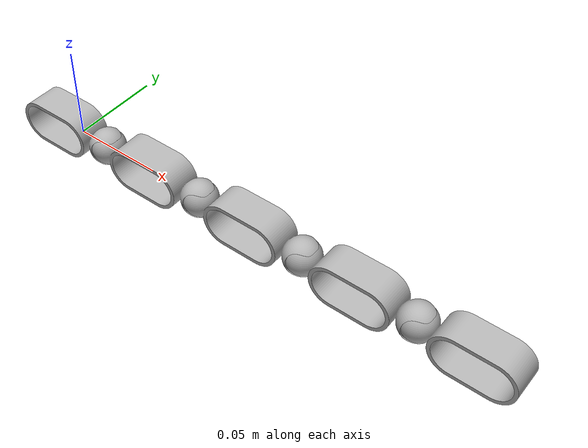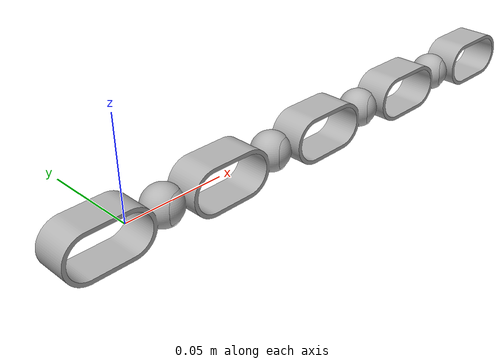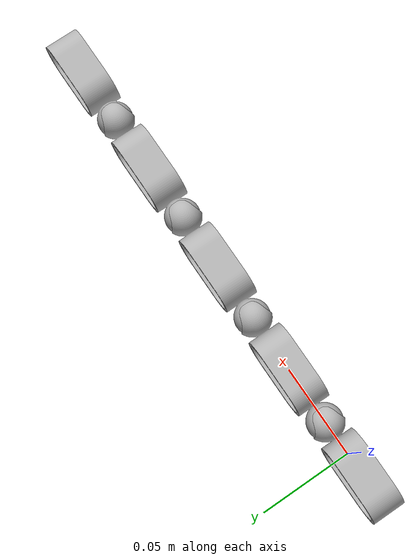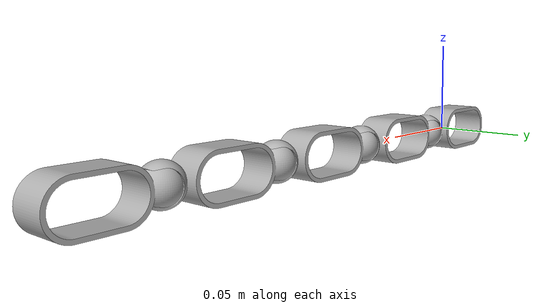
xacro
<?xml version="1.0" ?>
<robot name="yilansimu" xmlns:xacro="http://www.ros.org/wiki/xacro">

<xacro:include filename="$(find yilansimu_description)/urdf/materials.xacro" />
<xacro:include filename="$(find yilansimu_description)/urdf/yilansimu.trans" />
<xacro:include filename="$(find yilansimu_description)/urdf/yilansimu.gazebo" />
<link name="base_link">
  <inertial>
    <origin xyz="-0.010140486124849883 4.3371337475389595e-08 1.3412238498127023e-08" rpy="0 0 0"/>
    <mass value="0.0045795100400537"/>
    <inertia ixx="0.0" iyy="1e-06" izz="1e-06" ixy="-0.0" iyz="-0.0" ixz="-0.0"/>
  </inertial>
  <visual>
    <origin xyz="0 0 0" rpy="0 0 0"/>
    <geometry>
      <mesh filename="package://yilansimu_description/meshes/base_link.stl" scale="0.001 0.001 0.001"/>
    </geometry>
    <material name="silver"/>
  </visual>
  <collision>
    <origin xyz="0 0 0" rpy="0 0 0"/>
    <geometry>
      <mesh filename="package://yilansimu_description/meshes/base_link.stl" scale="0.001 0.001 0.001"/>
    </geometry>
  </collision>
</link>

<link name="vagon_2_1">
  <inertial>
    <origin xyz="0.01853454749117604 2.2477804808574556e-08 1.0179807043573104e-08" rpy="0 0 0"/>
    <mass value="0.008294307256815443"/>
    <inertia ixx="1e-06" iyy="4e-06" izz="4e-06" ixy="-0.0" iyz="-0.0" ixz="-0.0"/>
  </inertial>
  <visual>
    <origin xyz="-0.019292 -0.0 -0.0" rpy="0 0 0"/>
    <geometry>
      <mesh filename="package://yilansimu_description/meshes/vagon_2_1.stl" scale="0.001 0.001 0.001"/>
    </geometry>
    <material name="silver"/>
  </visual>
  <collision>
    <origin xyz="-0.019292 -0.0 -0.0" rpy="0 0 0"/>
    <geometry>
      <mesh filename="package://yilansimu_description/meshes/vagon_2_1.stl" scale="0.001 0.001 0.001"/>
    </geometry>
  </collision>
</link>

<link name="vagon_3_1">
  <inertial>
    <origin xyz="0.018534610223486 2.2477804796088586e-08 1.01798070413029e-08" rpy="0 0 0"/>
    <mass value="0.008294307256815481"/>
    <inertia ixx="1e-06" iyy="4e-06" izz="4e-06" ixy="-0.0" iyz="-0.0" ixz="-0.0"/>
  </inertial>
  <visual>
    <origin xyz="-0.082299 -0.0 -0.0" rpy="0 0 0"/>
    <geometry>
      <mesh filename="package://yilansimu_description/meshes/vagon_3_1.stl" scale="0.001 0.001 0.001"/>
    </geometry>
    <material name="silver"/>
  </visual>
  <collision>
    <origin xyz="-0.082299 -0.0 -0.0" rpy="0 0 0"/>
    <geometry>
      <mesh filename="package://yilansimu_description/meshes/vagon_3_1.stl" scale="0.001 0.001 0.001"/>
    </geometry>
  </collision>
</link>

<link name="vagon_4_1">
  <inertial>
    <origin xyz="0.018534672955795556 2.2477804815385055e-08 1.0179807043573117e-08" rpy="0 0 0"/>
    <mass value="0.008294307256815433"/>
    <inertia ixx="1e-06" iyy="4e-06" izz="4e-06" ixy="-0.0" iyz="-0.0" ixz="-0.0"/>
  </inertial>
  <visual>
    <origin xyz="-0.145306 -0.0 -0.0" rpy="0 0 0"/>
    <geometry>
      <mesh filename="package://yilansimu_description/meshes/vagon_4_1.stl" scale="0.001 0.001 0.001"/>
    </geometry>
    <material name="silver"/>
  </visual>
  <collision>
    <origin xyz="-0.145306 -0.0 -0.0" rpy="0 0 0"/>
    <geometry>
      <mesh filename="package://yilansimu_description/meshes/vagon_4_1.stl" scale="0.001 0.001 0.001"/>
    </geometry>
  </collision>
</link>

<link name="vagon_5_1">
  <inertial>
    <origin xyz="0.01642845287141645 -5.974834763900499e-18 -7.169801716680599e-18" rpy="0 0 0"/>
    <mass value="0.007878620598601473"/>
    <inertia ixx="1e-06" iyy="3e-06" izz="3e-06" ixy="-0.0" iyz="-0.0" ixz="0.0"/>
  </inertial>
  <visual>
    <origin xyz="-0.208313 -0.0 -0.0" rpy="0 0 0"/>
    <geometry>
      <mesh filename="package://yilansimu_description/meshes/vagon_5_1.stl" scale="0.001 0.001 0.001"/>
    </geometry>
    <material name="silver"/>
  </visual>
  <collision>
    <origin xyz="-0.208313 -0.0 -0.0" rpy="0 0 0"/>
    <geometry>
      <mesh filename="package://yilansimu_description/meshes/vagon_5_1.stl" scale="0.001 0.001 0.001"/>
    </geometry>
  </collision>
</link>

<joint name="Revolute 30" type="revolute">
  <origin xyz="0.019292 0.0 0.0" rpy="0 0 0"/>
  <parent link="base_link"/>
  <child link="vagon_2_1"/>
  <axis xyz="0.0 0.0 1.0"/>
  <limit upper="1.396263" lower="-1.396263" effort="100" velocity="100"/>
</joint>

<joint name="Revolute 31" type="revolute">
  <origin xyz="0.063007 0.0 0.0" rpy="0 0 0"/>
  <parent link="vagon_2_1"/>
  <child link="vagon_3_1"/>
  <axis xyz="0.0 0.0 1.0"/>
  <limit upper="1.396263" lower="-1.396263" effort="100" velocity="100"/>
</joint>

<joint name="Revolute 32" type="revolute">
  <origin xyz="0.063007 0.0 0.0" rpy="0 0 0"/>
  <parent link="vagon_3_1"/>
  <child link="vagon_4_1"/>
  <axis xyz="0.0 0.0 1.0"/>
  <limit upper="1.396263" lower="-1.396263" effort="100" velocity="100"/>
</joint>

<joint name="Revolute 33" type="revolute">
  <origin xyz="0.063007 0.0 0.0" rpy="0 0 0"/>
  <parent link="vagon_4_1"/>
  <child link="vagon_5_1"/>
  <axis xyz="0.0 0.0 1.0"/>
  <limit upper="1.396263" lower="-1.396263" effort="100" velocity="100"/>
</joint>

</robot>

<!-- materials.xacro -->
<robot name="yilansimu" xmlns:xacro="http://www.ros.org/wiki/xacro" >

<material name="silver">
  <color rgba="0.700 0.700 0.700 1.000"/>
</material>

</robot>

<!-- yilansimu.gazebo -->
<robot name="yilansimu" xmlns:xacro="http://www.ros.org/wiki/xacro" >

<xacro:property name="body_color" value="Gazebo/Silver" />

<gazebo>
  <plugin name="control" filename="libgazebo_ros_control.so"/>
</gazebo>
<gazebo reference="base_link">
  <material>${body_color}</material>
  <mu1>0.2</mu1>
  <mu2>0.2</mu2>
  <selfCollide>true</selfCollide>
  <gravity>true</gravity>
</gazebo>

<gazebo reference="vagon_2_1">
  <material>${body_color}</material>
  <mu1>0.2</mu1>
  <mu2>0.2</mu2>
  <selfCollide>true</selfCollide>
</gazebo>

<gazebo reference="vagon_3_1">
  <material>${body_color}</material>
  <mu1>0.2</mu1>
  <mu2>0.2</mu2>
  <selfCollide>true</selfCollide>
</gazebo>

<gazebo reference="vagon_4_1">
  <material>${body_color}</material>
  <mu1>0.2</mu1>
  <mu2>0.2</mu2>
  <selfCollide>true</selfCollide>
</gazebo>

<gazebo reference="vagon_5_1">
  <material>${body_color}</material>
  <mu1>0.2</mu1>
  <mu2>0.2</mu2>
  <selfCollide>true</selfCollide>
</gazebo>

</robot>
